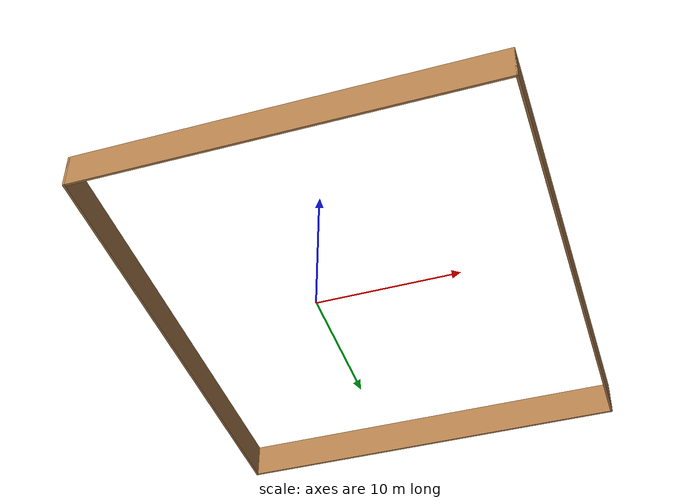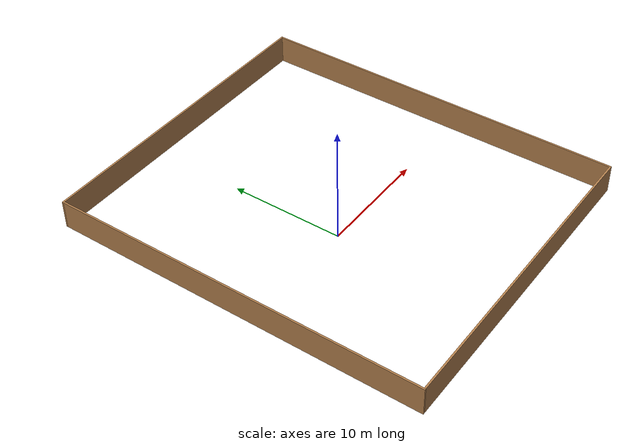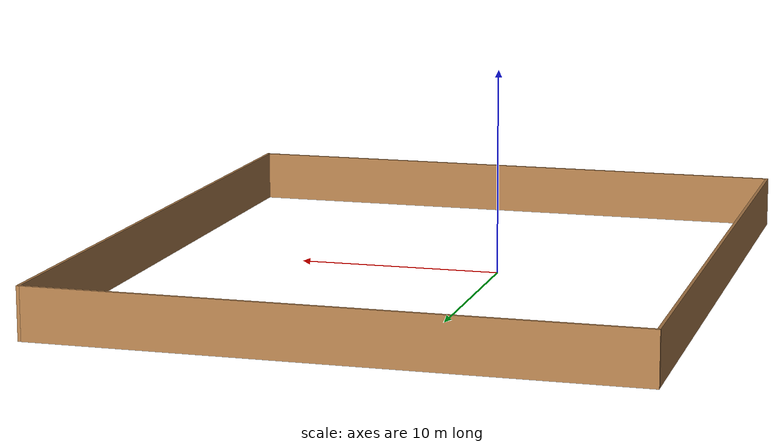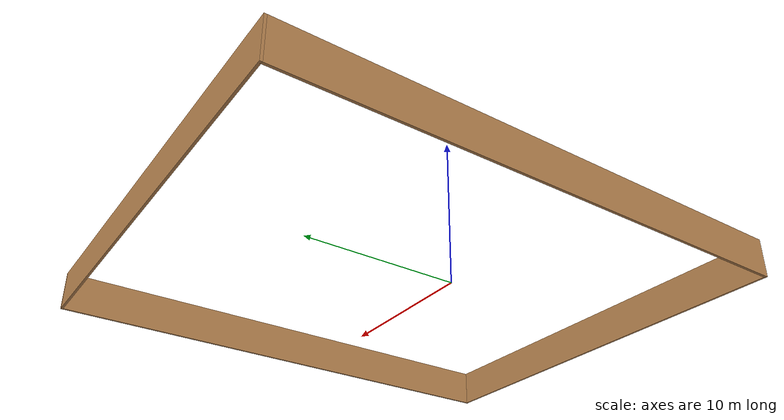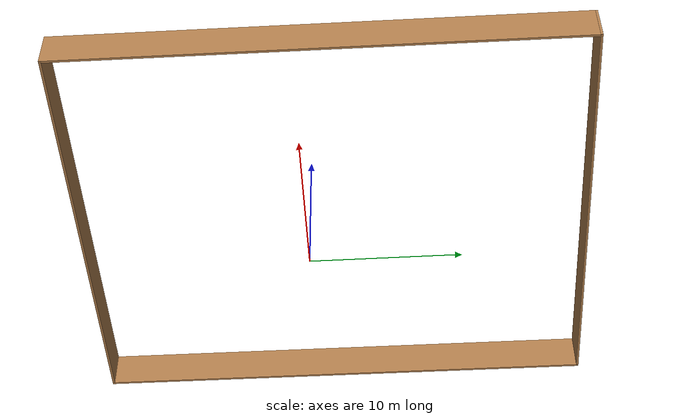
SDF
<?xml version='1.0'?>
<sdf version='1.7'>
  <model name='customworld2.world'>
    <pose>2.90934 1.6636 0 0 -0 0</pose>
    <link name='Wall_10'>
      <collision name='Wall_10_Collision'>
        <geometry>
          <box>
            <size>28.25 0.15 2.5</size>
          </box>
        </geometry>
        <pose>0 0 1.25 0 -0 0</pose>
      </collision>
      <visual name='Wall_10_Visual'>
        <pose>0 0 1.25 0 -0 0</pose>
        <geometry>
          <box>
            <size>28.25 0.15 2.5</size>
          </box>
        </geometry>
        <material>
          <script>
            <uri>file://media/materials/scripts/gazebo.material</uri>
            <name>Gazebo/Wood</name>
          </script>
          <ambient>1 1 1 1</ambient>
        </material>
        <meta>
          <layer>0</layer>
        </meta>
      </visual>
      <pose>0 -16.425 0 0 -0 0</pose>
    </link>
    <link name='Wall_11'>
      <collision name='Wall_11_Collision'>
        <geometry>
          <box>
            <size>33 0.15 2.5</size>
          </box>
        </geometry>
        <pose>0 0 1.25 0 -0 0</pose>
      </collision>
      <visual name='Wall_11_Visual'>
        <pose>0 0 1.25 0 -0 0</pose>
        <geometry>
          <box>
            <size>33 0.15 2.5</size>
          </box>
        </geometry>
        <material>
          <script>
            <uri>file://media/materials/scripts/gazebo.material</uri>
            <name>Gazebo/Wood</name>
          </script>
          <ambient>1 1 1 1</ambient>
        </material>
        <meta>
          <layer>0</layer>
        </meta>
      </visual>
      <pose>14.05 -0 0 0 -0 1.5708</pose>
    </link>
    <link name='Wall_12'>
      <collision name='Wall_12_Collision'>
        <geometry>
          <box>
            <size>28.25 0.15 2.5</size>
          </box>
        </geometry>
        <pose>0 0 1.25 0 -0 0</pose>
      </collision>
      <visual name='Wall_12_Visual'>
        <pose>0 0 1.25 0 -0 0</pose>
        <geometry>
          <box>
            <size>28.25 0.15 2.5</size>
          </box>
        </geometry>
        <material>
          <script>
            <uri>file://media/materials/scripts/gazebo.material</uri>
            <name>Gazebo/Wood</name>
          </script>
          <ambient>1 1 1 1</ambient>
        </material>
        <meta>
          <layer>0</layer>
        </meta>
      </visual>
      <pose>0 16.425 0 0 -0 3.14159</pose>
    </link>
    <link name='Wall_9'>
      <collision name='Wall_9_Collision'>
        <geometry>
          <box>
            <size>33 0.15 2.5</size>
          </box>
        </geometry>
        <pose>0 0 1.25 0 -0 0</pose>
      </collision>
      <visual name='Wall_9_Visual'>
        <pose>0 0 1.25 0 -0 0</pose>
        <geometry>
          <box>
            <size>33 0.15 2.5</size>
          </box>
        </geometry>
        <material>
          <script>
            <uri>file://media/materials/scripts/gazebo.material</uri>
            <name>Gazebo/Wood</name>
          </script>
          <ambient>1 1 1 1</ambient>
        </material>
        <meta>
          <layer>0</layer>
        </meta>
      </visual>
      <pose>-14.05 -0 0 0 -0 -1.5708</pose>
    </link>
    <static>1</static>
  </model>
</sdf>
